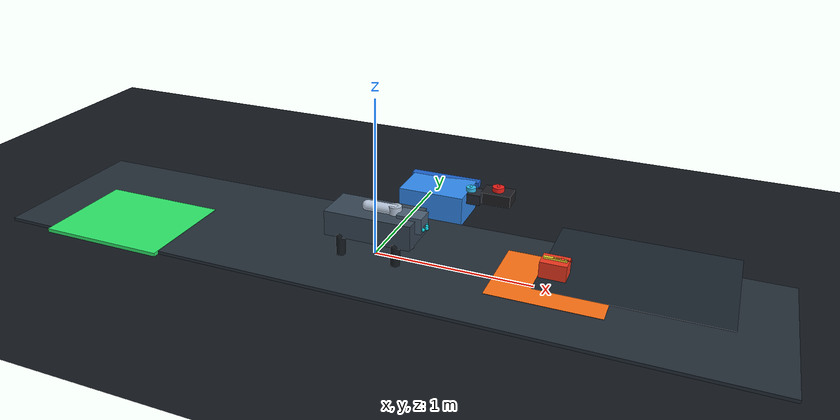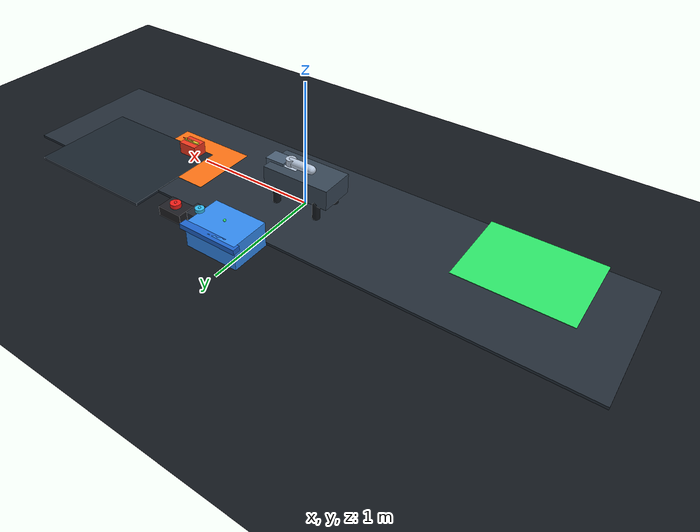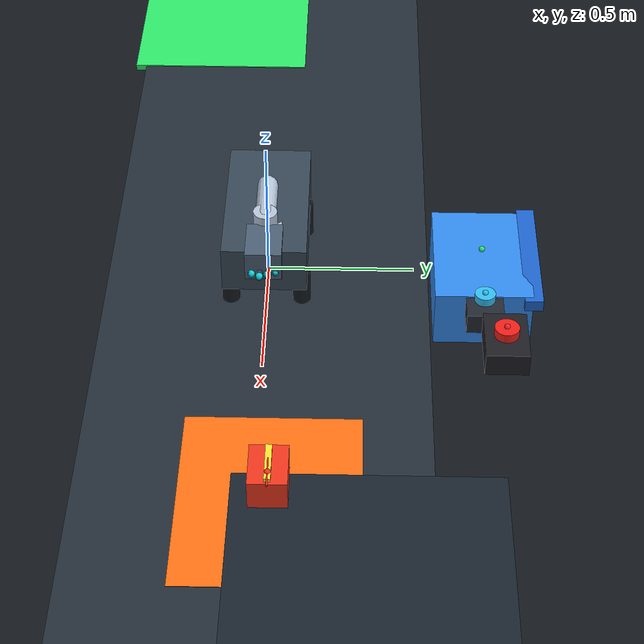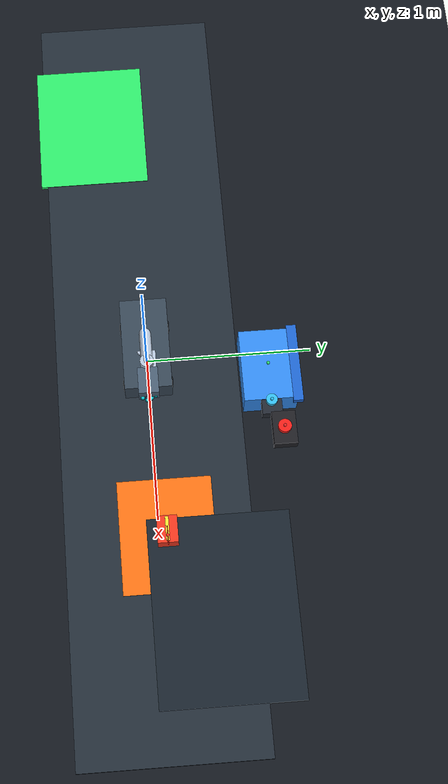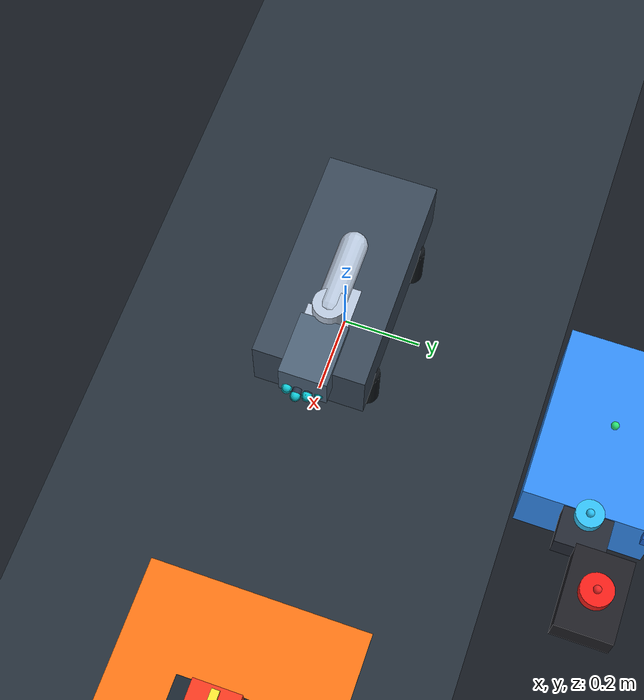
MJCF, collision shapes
<mujoco model="aegis_sentinel_eod">
  <compiler angle="degree" autolimits="true"/>
  <option timestep="0.004" gravity="0 0 -9.81" integrator="RK4"/>

  <visual>
    <global offwidth="1280" offheight="720"/>
    <rgba haze="0.04 0.06 0.10 1"/>
    <quality shadowsize="2048"/>
    <map znear="0.02" zfar="30"/>
  </visual>

  <asset>
    <texture name="floor_grid" type="2d" builtin="checker" width="512" height="512"
      rgb1="0.05 0.07 0.09" rgb2="0.10 0.12 0.15"/>
    <material name="floor_mat" texture="floor_grid" texrepeat="8 6" reflectance="0.06"/>
    <material name="walk_mat" rgba="0.14 0.18 0.22 1"/>
    <material name="aegis_mat" rgba="0.22 0.28 0.34 1"/>
    <material name="leg_mat" rgba="0.08 0.10 0.12 1"/>
    <material name="arm_mat" rgba="0.72 0.78 0.86 1"/>
    <material name="finger_mat" rgba="0.16 0.22 0.30 1"/>
    <material name="hazard_mat" rgba="1.00 0.45 0.08 1"/>
    <material name="safe_mat" rgba="0.18 0.92 0.42 0.72"/>
    <material name="package_mat" rgba="0.95 0.22 0.12 0.88"/>
    <mesh name="aegis_base_mesh" file="../../assets/Aegis/meshes/BASE_LINK.STL" scale="0.14 0.14 0.14"/>
  </asset>

  <default>
    <geom contype="1" conaffinity="1" friction="1.1 0.03 0.002" solref="0.012 1" solimp="0.92 0.95 0.001"/>
    <joint damping="1.4" armature="0.012"/>
    <site size="0.010" rgba="1 1 1 0.55"/>
  </default>

  <worldbody>
    <geom name="floor" type="plane" size="8 8 0.05" material="floor_mat"/>
    <geom name="walkway" type="box" pos="0 0 0.01" size="2.4 0.55 0.01" material="walk_mat"/>
    <geom name="lab_pad" type="box" pos="1.55 0.35 0.012" size="0.55 0.42 0.012" rgba="0.10 0.14 0.18 1"/>
    <geom name="dispatch_pad" type="box" pos="-1.65 -0.25 0.012" size="0.42 0.34 0.012" material="safe_mat"/>
    <geom name="hazard_zone" type="box" pos="1.10 0.05 0.014" size="0.34 0.28 0.008" material="hazard_mat"/>
    <geom name="containment_bin" type="box" pos="0.15 0.72 0.10" size="0.22 0.16 0.10" rgba="0.20 0.55 0.95 0.55"/>
    <geom name="bin_lip" type="box" pos="0.15 0.88 0.18" size="0.24 0.03 0.02" rgba="0.12 0.40 0.82 0.65"/>

    <body name="suspicious_package" pos="1.10 0.05 0.12">
      <joint name="package_free" type="free"/>
      <geom name="package_body" type="box" size="0.08 0.06 0.05" material="package_mat" mass="0.14"/>
      <geom name="package_tape" type="box" pos="0 0 0.052" size="0.07 0.01 0.01" rgba="1 0.9 0.2 1"/>
      <site name="package_grasp_site" pos="0 0 0" rgba="1 0.3 0.1 0.85"/>
      <body name="tripwire" pos="0.04 0 0.06">
        <joint name="wire_slide" type="slide" axis="0 1 0" range="-0.10 0.0" damping="3"/>
        <geom name="wire_geom" type="cylinder" size="0.003 0.055" rgba="0.95 0.15 0.10 1" euler="0 90 0"/>
        <site name="wire_site" pos="0 0 0" rgba="1 0.2 0.1 0.9"/>
      </body>
    </body>

    <body name="containment_goal" pos="0.15 0.72 0.22">
      <site name="bin_goal_site" pos="0 0 0" rgba="0.2 1 0.4 0.85"/>
    </body>

    <body name="seal_housing" pos="0.38 0.72 0.16">
      <geom name="seal_base" type="box" size="0.08 0.06 0.035" rgba="0.14 0.16 0.20 1"/>
      <body name="seal_button" pos="0 0 0.050">
        <joint name="seal_slide" type="slide" axis="0 0 1" range="-0.026 0.000" damping="4"/>
        <geom name="seal_cap" type="cylinder" size="0.034 0.014" rgba="0.20 0.75 0.95 1"/>
        <site name="seal_site" pos="0 0 0.016" rgba="0.2 0.8 1 0.85"/>
      </body>
    </body>

    <body name="alarm_housing" pos="0.55 0.78 0.16">
      <geom name="alarm_base" type="box" size="0.10 0.07 0.04" rgba="0.12 0.12 0.14 1"/>
      <body name="alarm_button" pos="0 0 0.055">
        <joint name="alarm_slide" type="slide" axis="0 0 1" range="-0.030 0.000" damping="5"/>
        <geom name="alarm_cap" type="cylinder" size="0.040 0.016" rgba="0.95 0.12 0.10 1"/>
        <site name="alarm_site" pos="0 0 0.018" rgba="1 0.2 0.2 0.85"/>
      </body>
    </body>

    <body name="aegis_platform" pos="0 0 0.22">
      <joint name="base_x" type="slide" axis="1 0 0" range="-2.4 2.4" damping="22"/>
      <joint name="base_y" type="slide" axis="0 1 0" range="-1.6 1.6" damping="22"/>
      <joint name="base_yaw" type="hinge" axis="0 0 1" range="-180 180" damping="8"/>
      <geom name="aegis_body" type="box" size="0.28 0.14 0.08" material="aegis_mat" rgba="0.22 0.28 0.34 0.35"/>
      <geom name="aegis_mesh_visual" type="mesh" mesh="aegis_base_mesh" material="aegis_mat"
        pos="0 0 0.01" euler="0 90 0" contype="0" conaffinity="0"/>
      <geom name="aegis_head" type="box" pos="0.24 0 0.05" size="0.08 0.06 0.05" rgba="0.30 0.38 0.46 1"/>
      <site name="range_origin" pos="0.30 0 0.02" rgba="0.2 0.8 1 0.8"/>
      <site name="platform_center" pos="0 0 0.02" rgba="1 1 1 0.75"/>

      <body name="fl_leg" pos="0.18 0.12 -0.08">
        <joint name="fl_knee" type="hinge" axis="0 1 0" range="-55 55" damping="3"/>
        <geom name="fl_upper" type="capsule" fromto="0 0 0 0 0 -0.12" size="0.03" material="leg_mat"/>
        <geom name="fl_lower" type="capsule" fromto="0 0 -0.12 0 0 -0.22" size="0.025" material="leg_mat"/>
        <geom name="fl_foot" type="sphere" pos="0 0 -0.22" size="0.03" rgba="0.05 0.05 0.05 1"/>
      </body>
      <body name="fr_leg" pos="0.18 -0.12 -0.08">
        <joint name="fr_knee" type="hinge" axis="0 1 0" range="-55 55" damping="3"/>
        <geom name="fr_upper" type="capsule" fromto="0 0 0 0 0 -0.12" size="0.03" material="leg_mat"/>
        <geom name="fr_lower" type="capsule" fromto="0 0 -0.12 0 0 -0.22" size="0.025" material="leg_mat"/>
        <geom name="fr_foot" type="sphere" pos="0 0 -0.22" size="0.03" rgba="0.05 0.05 0.05 1"/>
      </body>
      <body name="rl_leg" pos="-0.18 0.12 -0.08">
        <joint name="rl_knee" type="hinge" axis="0 1 0" range="-55 55" damping="3"/>
        <geom name="rl_upper" type="capsule" fromto="0 0 0 0 0 -0.12" size="0.03" material="leg_mat"/>
        <geom name="rl_lower" type="capsule" fromto="0 0 -0.12 0 0 -0.22" size="0.025" material="leg_mat"/>
        <geom name="rl_foot" type="sphere" pos="0 0 -0.22" size="0.03" rgba="0.05 0.05 0.05 1"/>
      </body>
      <body name="rr_leg" pos="-0.18 -0.12 -0.08">
        <joint name="rr_knee" type="hinge" axis="0 1 0" range="-55 55" damping="3"/>
        <geom name="rr_upper" type="capsule" fromto="0 0 0 0 0 -0.12" size="0.03" material="leg_mat"/>
        <geom name="rr_lower" type="capsule" fromto="0 0 -0.12 0 0 -0.22" size="0.025" material="leg_mat"/>
        <geom name="rr_foot" type="sphere" pos="0 0 -0.22" size="0.03" rgba="0.05 0.05 0.05 1"/>
      </body>

      <body name="arm_base" pos="-0.05 0 0.10">
        <joint name="arm_yaw" type="hinge" axis="0 0 1" range="-120 120" damping="4"/>
        <joint name="arm_pitch" type="hinge" axis="0 1 0" range="-35 85" damping="4"/>
        <joint name="arm_extend" type="slide" axis="1 0 0" range="0.0 0.42" damping="6"/>
        <geom name="arm_link" type="capsule" fromto="0 0 0 0.18 0 0" size="0.035" material="arm_mat"/>

        <body name="wrist" pos="0.18 0 0">
          <joint name="wrist_roll" type="hinge" axis="1 0 0" range="-90 90" damping="3"/>
          <geom name="wrist_shell" type="cylinder" size="0.04 0.03" material="arm_mat"/>
          <site name="cutter_tip" pos="0.06 0 -0.02" rgba="0.9 0.9 0.2 0.9"/>

          <body name="palm" pos="0 0 -0.04">
            <geom name="palm_plate" type="box" size="0.08 0.055 0.02" material="arm_mat"/>
            <site name="palm_center" pos="0 0 -0.015" rgba="1 1 1 0.8"/>

            <body name="finger_a_base" pos="0.045 -0.038 -0.01">
              <joint name="finger_a_flex" type="hinge" axis="0 1 0" range="-5 95"/>
              <geom name="finger_a_prox" type="capsule" fromto="0 0 0 0.09 0 -0.015" size="0.011" material="finger_mat"/>
              <body name="finger_a_tip_body" pos="0.09 0 -0.015">
                <joint name="finger_a_tip" type="hinge" axis="0 1 0" range="0 88"/>
                <geom name="finger_a_dist" type="capsule" fromto="0 0 0 0.06 0 -0.01" size="0.010" material="finger_mat"/>
                <site name="finger_a_pad" pos="0.06 0 -0.01" size="0.013" rgba="0.1 0.95 1 0.85"/>
              </body>
            </body>

            <body name="finger_b_base" pos="0.048 -0.012 -0.01">
              <joint name="finger_b_flex" type="hinge" axis="0 1 0" range="-5 98"/>
              <geom name="finger_b_prox" type="capsule" fromto="0 0 0 0.095 0 -0.015" size="0.012" material="finger_mat"/>
              <body name="finger_b_tip_body" pos="0.095 0 -0.015">
                <joint name="finger_b_tip" type="hinge" axis="0 1 0" range="0 90"/>
                <geom name="finger_b_dist" type="capsule" fromto="0 0 0 0.065 0 -0.01" size="0.011" material="finger_mat"/>
                <site name="finger_b_pad" pos="0.065 0 -0.01" size="0.013" rgba="0.1 0.95 1 0.85"/>
              </body>
            </body>

            <body name="finger_c_base" pos="0.045 0.014 -0.01">
              <joint name="finger_c_flex" type="hinge" axis="0 1 0" range="-5 96"/>
              <geom name="finger_c_prox" type="capsule" fromto="0 0 0 0.092 0 -0.015" size="0.0115" material="finger_mat"/>
              <body name="finger_c_tip_body" pos="0.092 0 -0.015">
                <joint name="finger_c_tip" type="hinge" axis="0 1 0" range="0 89"/>
                <geom name="finger_c_dist" type="capsule" fromto="0 0 0 0.062 0 -0.01" size="0.0105" material="finger_mat"/>
                <site name="finger_c_pad" pos="0.062 0 -0.01" size="0.013" rgba="0.1 0.95 1 0.85"/>
              </body>
            </body>

            <body name="finger_d_base" pos="0.042 0.040 -0.01">
              <joint name="finger_d_flex" type="hinge" axis="0 1 0" range="-5 94"/>
              <geom name="finger_d_prox" type="capsule" fromto="0 0 0 0.085 0 -0.015" size="0.0105" material="finger_mat"/>
              <body name="finger_d_tip_body" pos="0.085 0 -0.015">
                <joint name="finger_d_tip" type="hinge" axis="0 1 0" range="0 86"/>
                <geom name="finger_d_dist" type="capsule" fromto="0 0 0 0.058 0 -0.01" size="0.010" material="finger_mat"/>
                <site name="finger_d_pad" pos="0.058 0 -0.01" size="0.012" rgba="0.1 0.95 1 0.85"/>
              </body>
            </body>

            <body name="thumb_base" pos="-0.028 -0.050 -0.008" euler="0 0 -42">
              <joint name="thumb_opp" type="hinge" axis="0 0 1" range="-30 72"/>
              <joint name="thumb_flex" type="hinge" axis="0 1 0" range="-8 90"/>
              <geom name="thumb_prox" type="capsule" fromto="0 0 0 0.075 0.010 -0.014" size="0.012" material="finger_mat"/>
              <body name="thumb_tip_body" pos="0.075 0.010 -0.014">
                <joint name="thumb_tip" type="hinge" axis="0 1 0" range="0 84"/>
                <geom name="thumb_dist" type="capsule" fromto="0 0 0 0.058 0.008 -0.010" size="0.0105" material="finger_mat"/>
                <site name="thumb_pad" pos="0.058 0.008 -0.010" size="0.014" rgba="0.1 0.95 1 0.85"/>
              </body>
            </body>
          </body>
        </body>
      </body>
    </body>

    <light name="key" pos="0 -2.5 3.5" dir="0 0.4 -1" diffuse="1 1 1"/>
    <light name="fill" pos="-2.2 2.0 2.4" dir="0.6 -0.4 -1" diffuse="0.55 0.65 0.8"/>
    <camera name="overview_camera" pos="2.0 -2.1 1.7" xyaxes="0.72 0.69 0 -0.30 0.32 0.89"/>
    <camera name="grasp_camera" pos="1.35 -0.35 0.55" xyaxes="0.05 0.99 0 -0.25 0.01 0.97" fovy="42"/>
  </worldbody>

  <actuator>
    <position name="base_x_servo" joint="base_x" kp="480" ctrlrange="-2.4 2.4" ctrllimited="true"/>
    <position name="base_y_servo" joint="base_y" kp="480" ctrlrange="-1.6 1.6" ctrllimited="true"/>
    <position name="base_yaw_servo" joint="base_yaw" kp="180" ctrlrange="-3.14 3.14" ctrllimited="true"/>
    <position name="fl_knee_servo" joint="fl_knee" kp="90" ctrlrange="-0.96 0.96" ctrllimited="true"/>
    <position name="fr_knee_servo" joint="fr_knee" kp="90" ctrlrange="-0.96 0.96" ctrllimited="true"/>
    <position name="rl_knee_servo" joint="rl_knee" kp="90" ctrlrange="-0.96 0.96" ctrllimited="true"/>
    <position name="rr_knee_servo" joint="rr_knee" kp="90" ctrlrange="-0.96 0.96" ctrllimited="true"/>
    <position name="arm_yaw_servo" joint="arm_yaw" kp="120" ctrlrange="-2.09 2.09" ctrllimited="true"/>
    <position name="arm_pitch_servo" joint="arm_pitch" kp="110" ctrlrange="-0.61 1.48" ctrllimited="true"/>
    <position name="arm_extend_servo" joint="arm_extend" kp="260" ctrlrange="0.0 0.42" ctrllimited="true"/>
    <position name="wrist_roll_servo" joint="wrist_roll" kp="90" ctrlrange="-1.57 1.57" ctrllimited="true"/>
    <position name="finger_a_flex_servo" joint="finger_a_flex" kp="70"/>
    <position name="finger_a_tip_servo" joint="finger_a_tip" kp="55"/>
    <position name="finger_b_flex_servo" joint="finger_b_flex" kp="72"/>
    <position name="finger_b_tip_servo" joint="finger_b_tip" kp="56"/>
    <position name="finger_c_flex_servo" joint="finger_c_flex" kp="71"/>
    <position name="finger_c_tip_servo" joint="finger_c_tip" kp="55"/>
    <position name="finger_d_flex_servo" joint="finger_d_flex" kp="68"/>
    <position name="finger_d_tip_servo" joint="finger_d_tip" kp="52"/>
    <position name="thumb_opp_servo" joint="thumb_opp" kp="68"/>
    <position name="thumb_flex_servo" joint="thumb_flex" kp="70"/>
    <position name="thumb_tip_servo" joint="thumb_tip" kp="54"/>
    <position name="wire_servo" joint="wire_slide" kp="140"/>
    <position name="alarm_servo" joint="alarm_slide" kp="120"/>
    <position name="seal_servo" joint="seal_slide" kp="110"/>
  </actuator>

  <sensor>
    <framepos name="platform_position" objtype="site" objname="platform_center"/>
    <framepos name="palm_position" objtype="site" objname="palm_center"/>
    <framepos name="package_position" objtype="site" objname="package_grasp_site"/>
    <framepos name="bin_goal_position" objtype="site" objname="bin_goal_site"/>
    <jointpos name="alarm_position" joint="alarm_slide"/>
    <jointpos name="seal_position" joint="seal_slide"/>
    <jointpos name="wire_position" joint="wire_slide"/>
    <touch name="finger_a_touch" site="finger_a_pad"/>
    <touch name="finger_b_touch" site="finger_b_pad"/>
    <touch name="finger_c_touch" site="finger_c_pad"/>
    <touch name="finger_d_touch" site="finger_d_pad"/>
    <touch name="thumb_touch" site="thumb_pad"/>
    <rangefinder name="forward_range" site="range_origin" cutoff="3.0"/>
    <framepos name="cutter_position" objtype="site" objname="cutter_tip"/>
  </sensor>
</mujoco>
